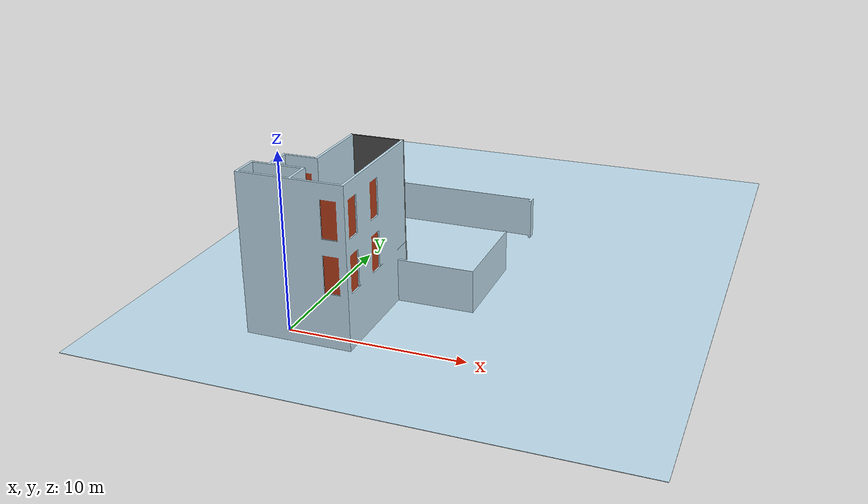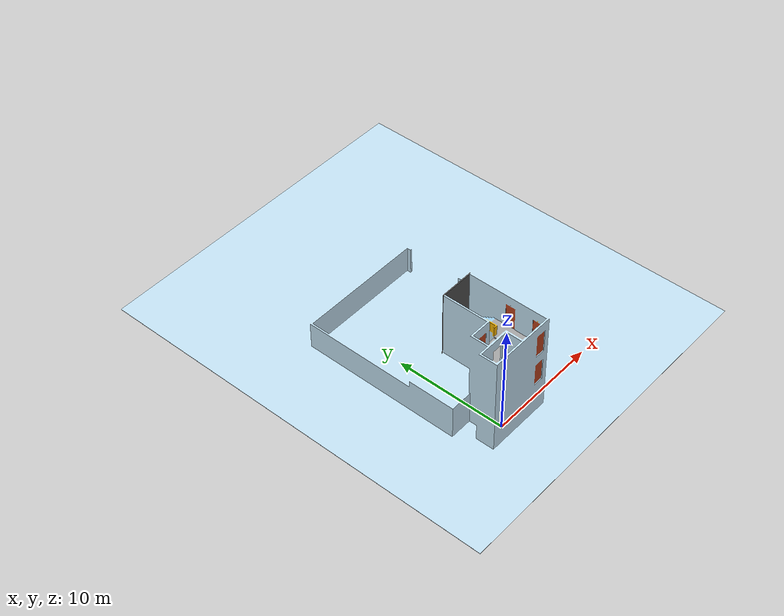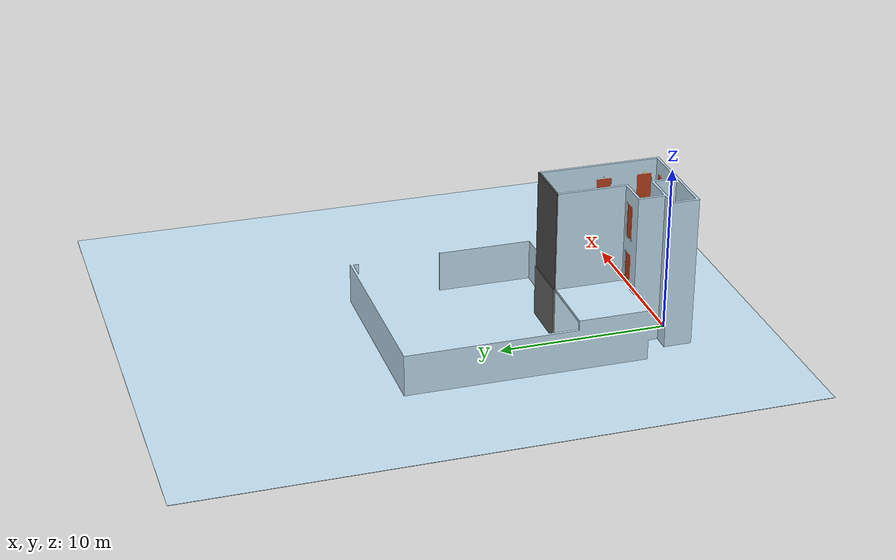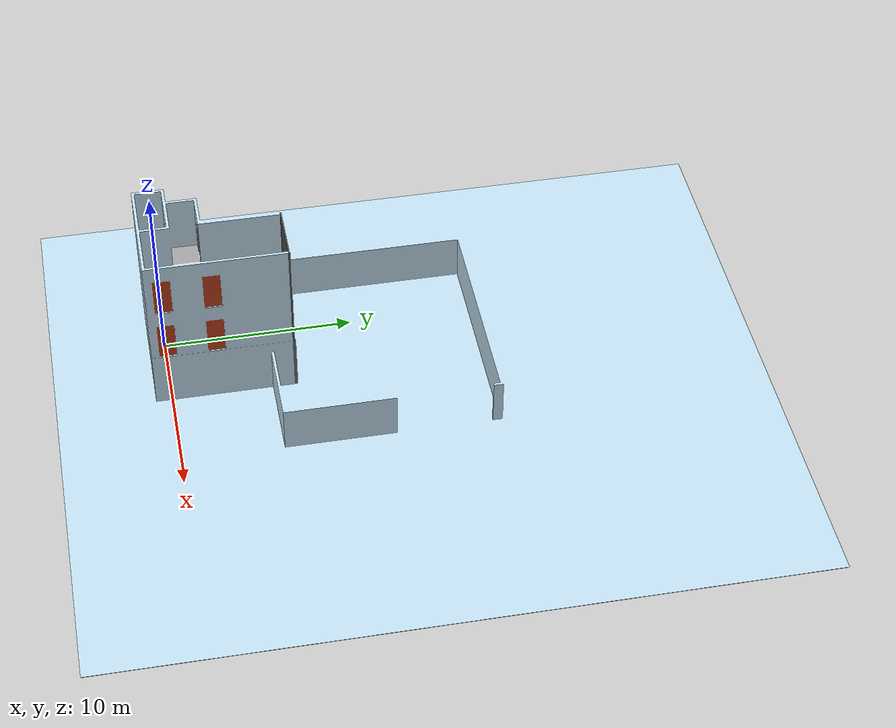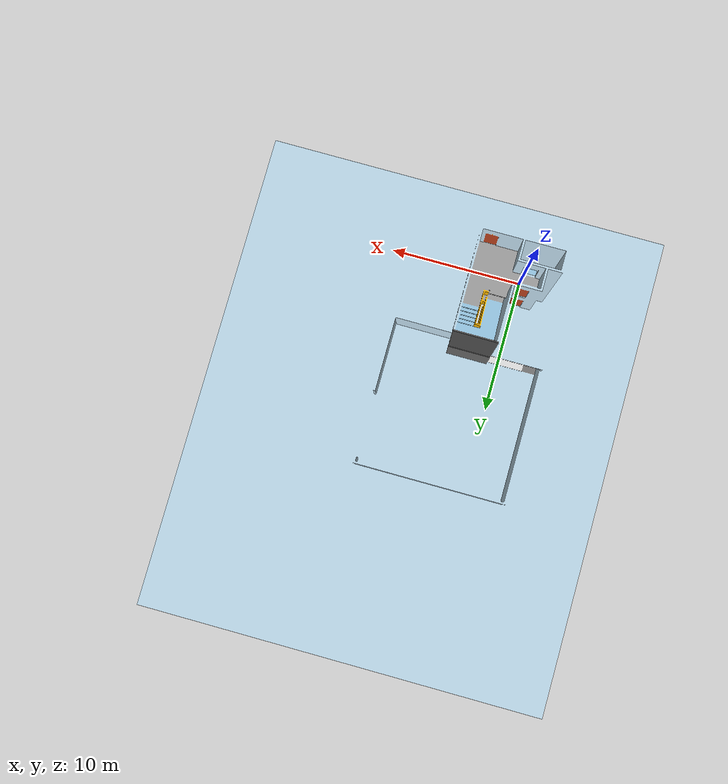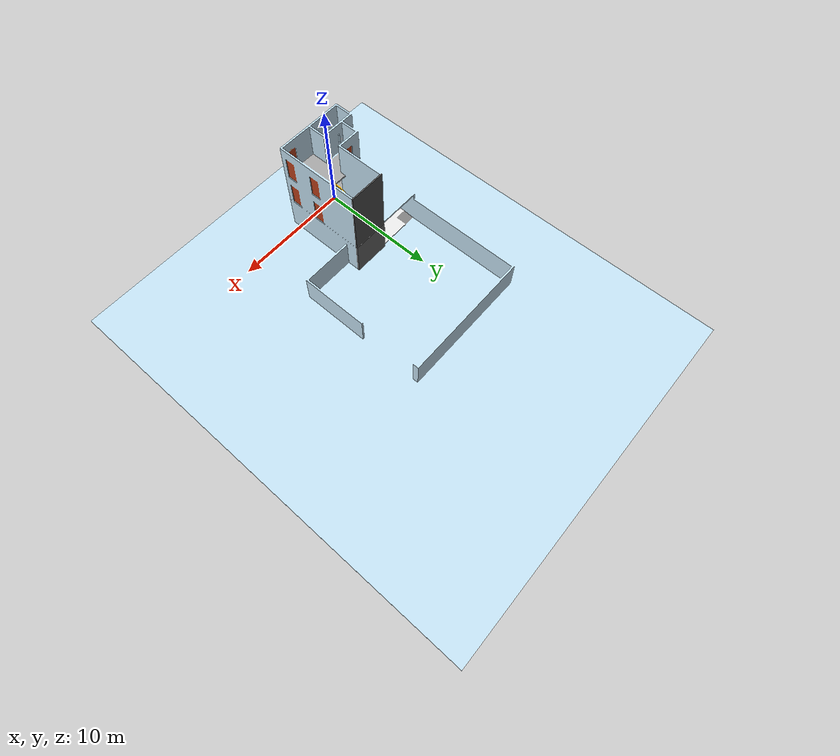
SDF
<?xml version="1.0"?>
<sdf version="1.4">
  <world name="default">
    <include>
      <uri>model://sun</uri>
    </include>

<!-- Environment Mesh -->
    <model name="wingA">
      <pose>0 0 -0.1 0 0 0</pose>
      <static>true</static>
      <link name="wingA">
        <visual name="visual">
          <geometry>
            <mesh><uri>model://wingA/wingAv7.dae</uri></mesh>
          </geometry>
        </visual>
        <collision name="collision">
          <geometry>
            <mesh><uri>model://wingA/wingAv7.dae</uri></mesh>
          </geometry>
        </collision>
      </link>
    </model>

    <plugin filename="libSimEventsPlugin.so" name="elevator_event_plugin">

      <region>
        <name>region1</name>
        <volume>
          <min>10 0.0 0</min>
          <max>12 2.0 1</max>
        </volume>
      </region>

      <region>
        <name>region2</name>
        <volume>
          <min>10 2.0 0</min>
          <max>12 4.0 1</max>
        </volume>
      </region>

      <region>
        <name>region3</name>
        <volume>
          <min>10 4.0 0</min>
          <max>12 6.0 1</max>
        </volume>
      </region>

      <event>
        <name>region1_event</name>
        <type>occupied</type>
        <region>region1</region>
        <topic>~/elevator</topic>
        <msg_data>0</msg_data>
      </event>

      <event>
        <name>region2_event</name>
        <type>occupied</type>
        <region>region2</region>
        <topic>~/elevator</topic>
        <msg_data>1</msg_data>
      </event>

      <event>
        <name>region3_event</name>
        <type>occupied</type>
        <region>region3</region>
        <topic>~/elevator</topic>
        <msg_data>2</msg_data>
      </event>

    </plugin>

    <model name="elevator">
      <pose>0 0 0 0 0 0</pose>

      <link name="car">
        <inertial>
          <mass>800</mass>
        </inertial>
        <visual name="visual">
          <geometry>
            <mesh>
              <uri>model://wingA/elevator_car.dae</uri>
            </mesh>
          </geometry>
        </visual>
        <collision name="collision">
          <geometry>
            <mesh>
              <uri>model://wingA/elevator_car.dae</uri>
            </mesh>
          </geometry>
        </collision>
      </link>

      <link name="door">
        <visual name="visual">
          <geometry>
            <mesh>
              <uri>model://wingA/elevator_door/elevator_door.dae</uri>
            </mesh>
          </geometry>
        </visual>
        <collision name="collision">
          <geometry>
            <mesh>
              <uri>model://wingA/elevator_door/elevator_door.dae</uri>
            </mesh>
          </geometry>
        </collision>
      </link>

      <joint name="door" type="prismatic">
        <parent>car</parent>
        <child>door</child>
        <axis>
          <xyz>-1 0 0</xyz>
          <limit>
            <lower>0</lower>
            <upper>1</upper>
            <effort>10</effort>
          </limit>

          <dynamics>
            <damping>2</damping>
          </dynamics>
        </axis>
      </joint>

      <joint name="lift" type="prismatic">
        <parent>world</parent>
        <child>car</child>
        <axis>
          <xyz>0 0 1</xyz>
          <limit>
            <lower>0</lower>
            <upper>6.0</upper>
            <effort>100000</effort>
          </limit>

          <dynamics>
            <damping>50</damping>
          </dynamics>
        </axis>
        <physics>
          <ode>
            <implicit_spring_damper>1</implicit_spring_damper>
          </ode>
        </physics>
      </joint>

      <plugin filename="libElevatorPlugin.so" name="elevator_plugin">
        <lift_joint>elevator::lift</lift_joint>
        <door_joint>elevator::door</door_joint>
        <floor_height>3.08</floor_height>

        <!-- Time the elevator door will stay open in seconds -->
        <door_wait_time>10</door_wait_time>

        <!-- This topic is used to control the elevator -->
        <topic>~/elevator</topic>
      </plugin>
    </model>
  </world>
</sdf>
